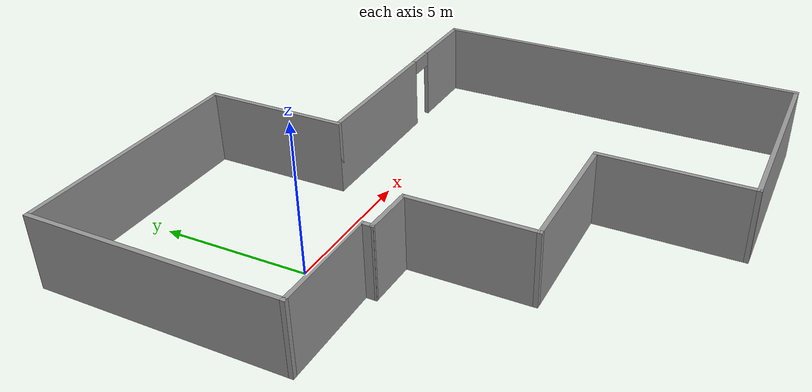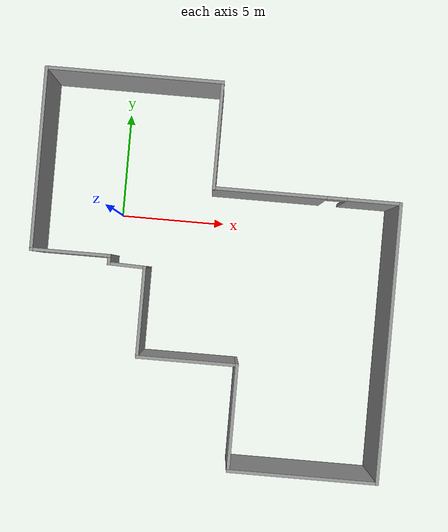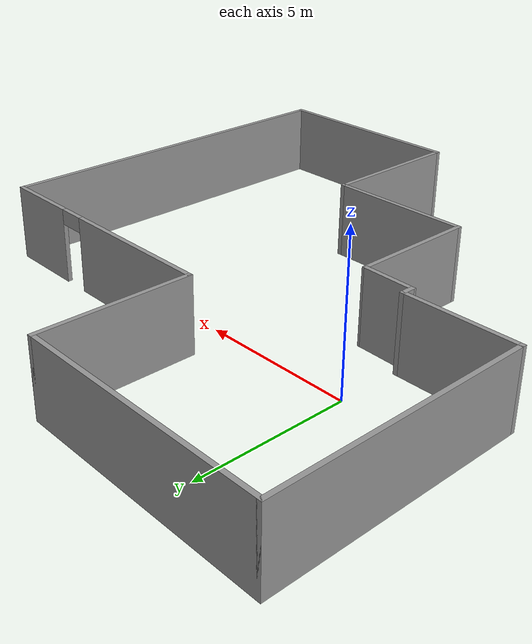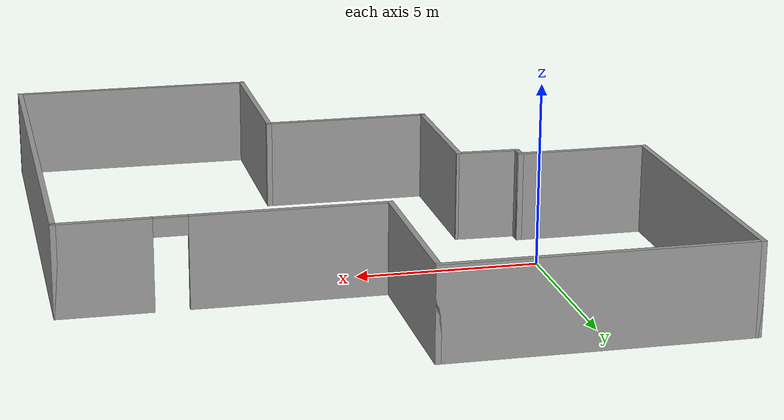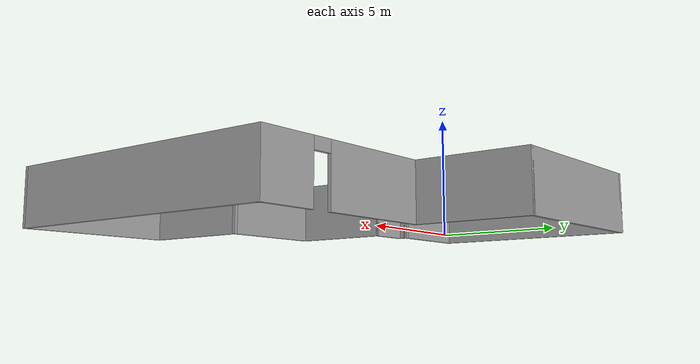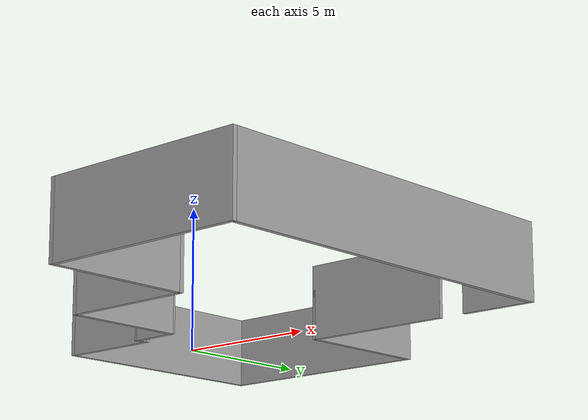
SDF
<?xml version='1.0'?>
<sdf version='1.7'>
  <model name='world1'>
    <pose>4.65 -2.58 0 0 -0 0</pose>
    <link name='Wall_0'>
      <collision name='Wall_0_Collision'>
        <geometry>
          <box>
            <size>3.75 0.15 2.5</size>
          </box>
        </geometry>
        <pose>0 0 1.25 0 -0 0</pose>
      </collision>
      <visual name='Wall_0_Visual'>
        <pose>0 0 1.25 0 -0 0</pose>
        <geometry>
          <box>
            <size>3.75 0.15 2.5</size>
          </box>
        </geometry>
        <material>
          <script>
            <uri>file://media/materials/scripts/gazebo.material</uri>
            <name>Gazebo/Grey</name>
          </script>
          <ambient>1 1 1 1</ambient>
        </material>
        <meta>
          <layer>0</layer>
        </meta>
      </visual>
      <pose>-6.55 0.5 0 0 -0 3.14159</pose>
    </link>
    <link name='Wall_1'>
      <collision name='Wall_1_Collision'>
        <geometry>
          <box>
            <size>8.5 0.15 2.5</size>
          </box>
        </geometry>
        <pose>0 0 1.25 0 -0 0</pose>
      </collision>
      <visual name='Wall_1_Visual'>
        <pose>0 0 1.25 0 -0 0</pose>
        <geometry>
          <box>
            <size>8.5 0.15 2.5</size>
          </box>
        </geometry>
        <material>
          <script>
            <uri>file://media/materials/scripts/gazebo.material</uri>
            <name>Gazebo/Grey</name>
          </script>
          <ambient>1 1 1 1</ambient>
        </material>
        <meta>
          <layer>0</layer>
        </meta>
      </visual>
      <pose>-8.35 4.675 0 0 -0 1.5708</pose>
    </link>
    <link name='Wall_12'>
      <collision name='Wall_12_Collision'>
        <geometry>
          <box>
            <size>0.5 0.15 2.5</size>
          </box>
        </geometry>
        <pose>0 0 1.25 0 -0 0</pose>
      </collision>
      <visual name='Wall_12_Visual'>
        <pose>0 0 1.25 0 -0 0</pose>
        <geometry>
          <box>
            <size>0.5 0.15 2.5</size>
          </box>
        </geometry>
        <material>
          <script>
            <uri>file://media/materials/scripts/gazebo.material</uri>
            <name>Gazebo/Grey</name>
          </script>
          <ambient>1 1 1 1</ambient>
        </material>
        <meta>
          <layer>0</layer>
        </meta>
      </visual>
      <pose>-4.75 0.325 0 0 -0 -1.5708</pose>
    </link>
    <link name='Wall_13'>
      <collision name='Wall_13_Collision'>
        <geometry>
          <box>
            <size>1.80076 0.15 2.5</size>
          </box>
        </geometry>
        <pose>0 0 1.25 0 -0 0</pose>
      </collision>
      <visual name='Wall_13_Visual'>
        <pose>0 0 1.25 0 -0 0</pose>
        <geometry>
          <box>
            <size>1.80076 0.15 2.5</size>
          </box>
        </geometry>
        <material>
          <script>
            <uri>file://media/materials/scripts/gazebo.material</uri>
            <name>Gazebo/Grey</name>
          </script>
          <ambient>1 1 1 1</ambient>
        </material>
        <meta>
          <layer>0</layer>
        </meta>
      </visual>
      <pose>-3.925 0.125 0 0 -0 -0.030294</pose>
    </link>
    <link name='Wall_2'>
      <collision name='Wall_2_Collision'>
        <geometry>
          <box>
            <size>8.25 0.15 2.5</size>
          </box>
        </geometry>
        <pose>0 0 1.25 0 -0 0</pose>
      </collision>
      <visual name='Wall_2_Visual'>
        <pose>0 0 1.25 0 -0 0</pose>
        <geometry>
          <box>
            <size>8.25 0.15 2.5</size>
          </box>
        </geometry>
        <material>
          <script>
            <uri>file://media/materials/scripts/gazebo.material</uri>
            <name>Gazebo/Grey</name>
          </script>
          <ambient>1 1 1 1</ambient>
        </material>
        <meta>
          <layer>0</layer>
        </meta>
      </visual>
      <pose>-4.3 8.85 0 0 -0 0</pose>
    </link>
    <link name='Wall_3'>
      <collision name='Wall_3_Collision'>
        <geometry>
          <box>
            <size>5 0.15 2.5</size>
          </box>
        </geometry>
        <pose>0 0 1.25 0 -0 0</pose>
      </collision>
      <visual name='Wall_3_Visual'>
        <pose>0 0 1.25 0 -0 0</pose>
        <geometry>
          <box>
            <size>5 0.15 2.5</size>
          </box>
        </geometry>
        <material>
          <script>
            <uri>file://media/materials/scripts/gazebo.material</uri>
            <name>Gazebo/Grey</name>
          </script>
          <ambient>1 1 1 1</ambient>
        </material>
        <meta>
          <layer>0</layer>
        </meta>
      </visual>
      <pose>-0.25 6.425 0 0 -0 -1.5708</pose>
    </link>
    <link name='Wall_4'>
      <pose>4.05 4 0 0 -0 0</pose>
      <visual name='Wall_4_Visual_0'>
        <pose>-1.7279 0 1.25 0 -0 0</pose>
        <geometry>
          <box>
            <size>5.2942 0.15 2.5</size>
          </box>
        </geometry>
        <material>
          <script>
            <uri>file://media/materials/scripts/gazebo.material</uri>
            <name>Gazebo/Grey</name>
          </script>
          <ambient>1 1 1 1</ambient>
        </material>
        <meta>
          <layer>0</layer>
        </meta>
      </visual>
      <collision name='Wall_4_Collision_0'>
        <geometry>
          <box>
            <size>5.2942 0.15 2.5</size>
          </box>
        </geometry>
        <pose>-1.7279 0 1.25 0 -0 0</pose>
      </collision>
      <visual name='Wall_4_Visual_1'>
        <pose>3.0971 0 1.25 0 -0 0</pose>
        <geometry>
          <box>
            <size>2.5558 0.15 2.5</size>
          </box>
        </geometry>
        <material>
          <script>
            <uri>file://media/materials/scripts/gazebo.material</uri>
            <name>Gazebo/Grey</name>
          </script>
          <ambient>1 1 1 1</ambient>
        </material>
        <meta>
          <layer>0</layer>
        </meta>
      </visual>
      <collision name='Wall_4_Collision_1'>
        <geometry>
          <box>
            <size>2.5558 0.15 2.5</size>
          </box>
        </geometry>
        <pose>3.0971 0 1.25 0 -0 0</pose>
      </collision>
      <visual name='Wall_4_Visual_2'>
        <pose>1.3692 0 2.25 0 -0 0</pose>
        <geometry>
          <box>
            <size>0.9 0.15 0.5</size>
          </box>
        </geometry>
        <material>
          <script>
            <uri>file://media/materials/scripts/gazebo.material</uri>
            <name>Gazebo/Grey</name>
          </script>
          <ambient>1 1 1 1</ambient>
        </material>
        <meta>
          <layer>0</layer>
        </meta>
      </visual>
      <collision name='Wall_4_Collision_2'>
        <geometry>
          <box>
            <size>0.9 0.15 0.5</size>
          </box>
        </geometry>
        <pose>1.3692 0 2.25 0 -0 0</pose>
      </collision>
    </link>
    <link name='Wall_5'>
      <collision name='Wall_5_Collision'>
        <geometry>
          <box>
            <size>13 0.15 2.5</size>
          </box>
        </geometry>
        <pose>0 0 1.25 0 -0 0</pose>
      </collision>
      <visual name='Wall_5_Visual'>
        <pose>0 0 1.25 0 -0 0</pose>
        <geometry>
          <box>
            <size>13 0.15 2.5</size>
          </box>
        </geometry>
        <material>
          <script>
            <uri>file://media/materials/scripts/gazebo.material</uri>
            <name>Gazebo/Grey</name>
          </script>
          <ambient>1 1 1 1</ambient>
        </material>
        <meta>
          <layer>0</layer>
        </meta>
      </visual>
      <pose>8.35 -2.425 0 0 -0 -1.5708</pose>
    </link>
    <link name='Wall_6'>
      <collision name='Wall_6_Collision'>
        <geometry>
          <box>
            <size>7 0.15 2.5</size>
          </box>
        </geometry>
        <pose>0 0 1.25 0 -0 0</pose>
      </collision>
      <visual name='Wall_6_Visual'>
        <pose>0 0 1.25 0 -0 0</pose>
        <geometry>
          <box>
            <size>7 0.15 2.5</size>
          </box>
        </geometry>
        <material>
          <script>
            <uri>file://media/materials/scripts/gazebo.material</uri>
            <name>Gazebo/Grey</name>
          </script>
          <ambient>1 1 1 1</ambient>
        </material>
        <meta>
          <layer>0</layer>
        </meta>
      </visual>
      <pose>4.925 -8.85 0 0 -0 3.14159</pose>
    </link>
    <link name='Wall_7'>
      <collision name='Wall_7_Collision'>
        <geometry>
          <box>
            <size>5 0.15 2.5</size>
          </box>
        </geometry>
        <pose>0 0 1.25 0 -0 0</pose>
      </collision>
      <visual name='Wall_7_Visual'>
        <pose>0 0 1.25 0 -0 0</pose>
        <geometry>
          <box>
            <size>5 0.15 2.5</size>
          </box>
        </geometry>
        <material>
          <script>
            <uri>file://media/materials/scripts/gazebo.material</uri>
            <name>Gazebo/Grey</name>
          </script>
          <ambient>1 1 1 1</ambient>
        </material>
        <meta>
          <layer>0</layer>
        </meta>
      </visual>
      <pose>1.5 -6.425 0 0 -0 1.5708</pose>
    </link>
    <link name='Wall_8'>
      <collision name='Wall_8_Collision'>
        <geometry>
          <box>
            <size>4.75 0.15 2.5</size>
          </box>
        </geometry>
        <pose>0 0 1.25 0 -0 0</pose>
      </collision>
      <visual name='Wall_8_Visual'>
        <pose>0 0 1.25 0 -0 0</pose>
        <geometry>
          <box>
            <size>4.75 0.15 2.5</size>
          </box>
        </geometry>
        <material>
          <script>
            <uri>file://media/materials/scripts/gazebo.material</uri>
            <name>Gazebo/Grey</name>
          </script>
          <ambient>1 1 1 1</ambient>
        </material>
        <meta>
          <layer>0</layer>
        </meta>
      </visual>
      <pose>-0.8 -4 0 0 -0 3.14159</pose>
    </link>
    <link name='Wall_9'>
      <collision name='Wall_9_Collision'>
        <geometry>
          <box>
            <size>4.25 0.15 2.5</size>
          </box>
        </geometry>
        <pose>0 0 1.25 0 -0 0</pose>
      </collision>
      <visual name='Wall_9_Visual'>
        <pose>0 0 1.25 0 -0 0</pose>
        <geometry>
          <box>
            <size>4.25 0.15 2.5</size>
          </box>
        </geometry>
        <material>
          <script>
            <uri>file://media/materials/scripts/gazebo.material</uri>
            <name>Gazebo/Grey</name>
          </script>
          <ambient>1 1 1 1</ambient>
        </material>
        <meta>
          <layer>0</layer>
        </meta>
      </visual>
      <pose>-3.1 -1.95 0 0 -0 1.5708</pose>
    </link>
    <static>1</static>
  </model>
</sdf>
